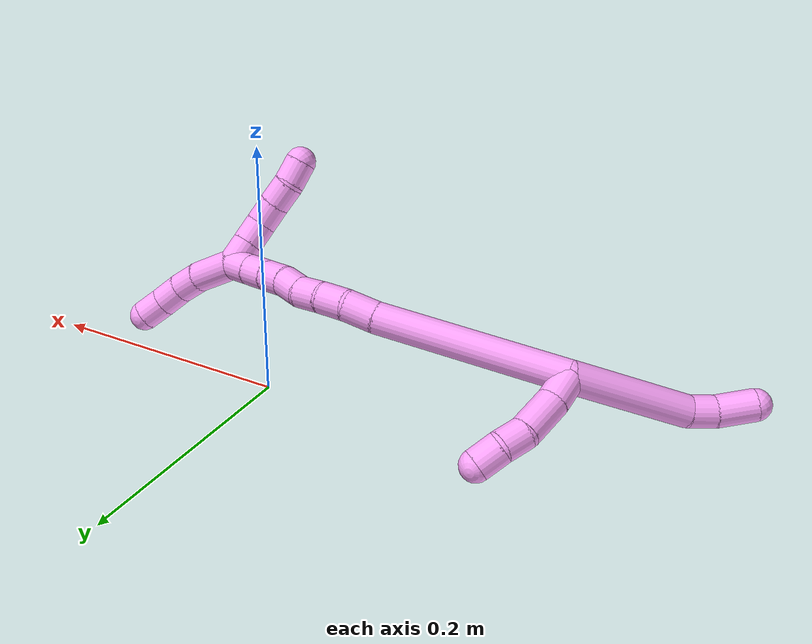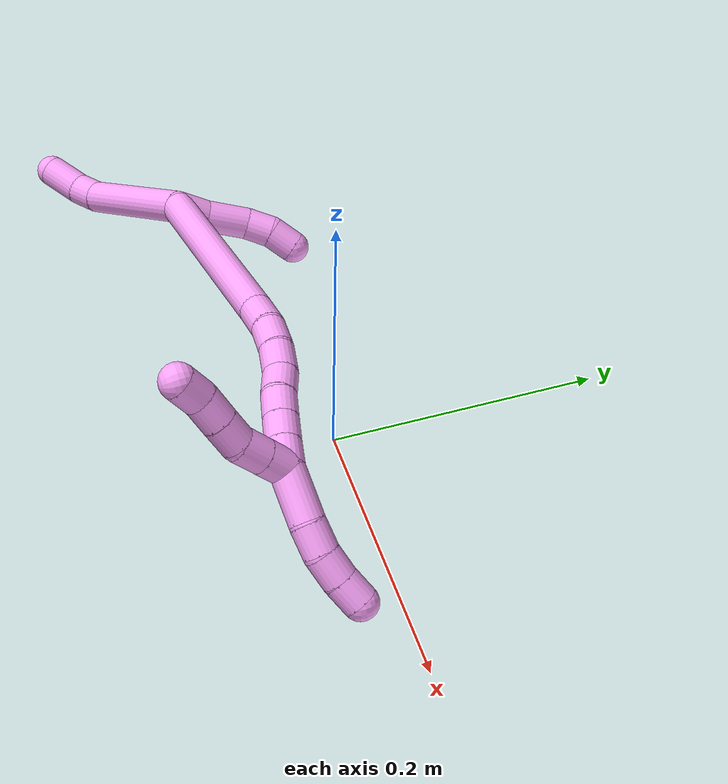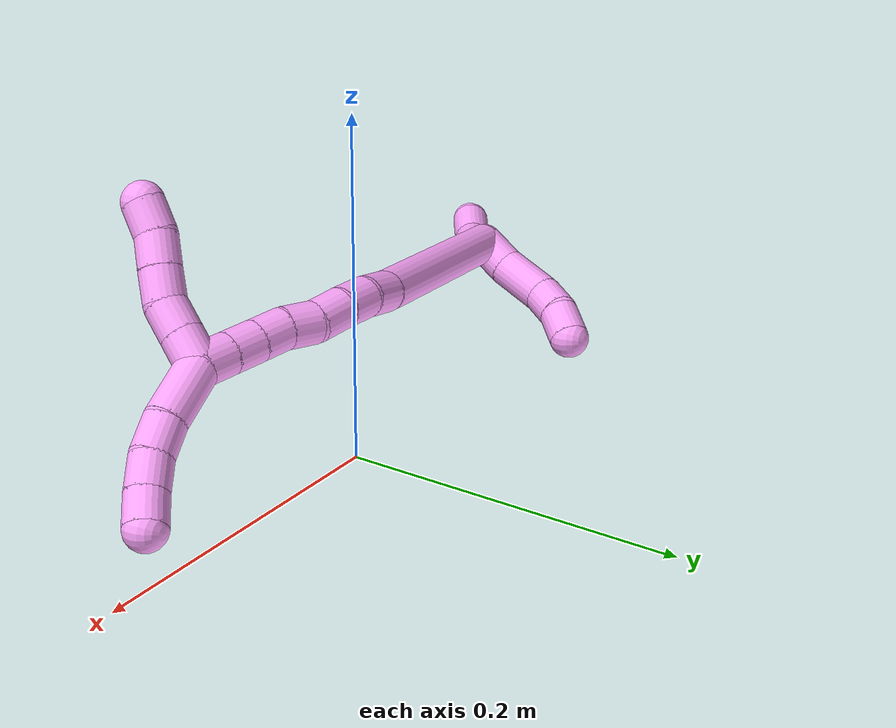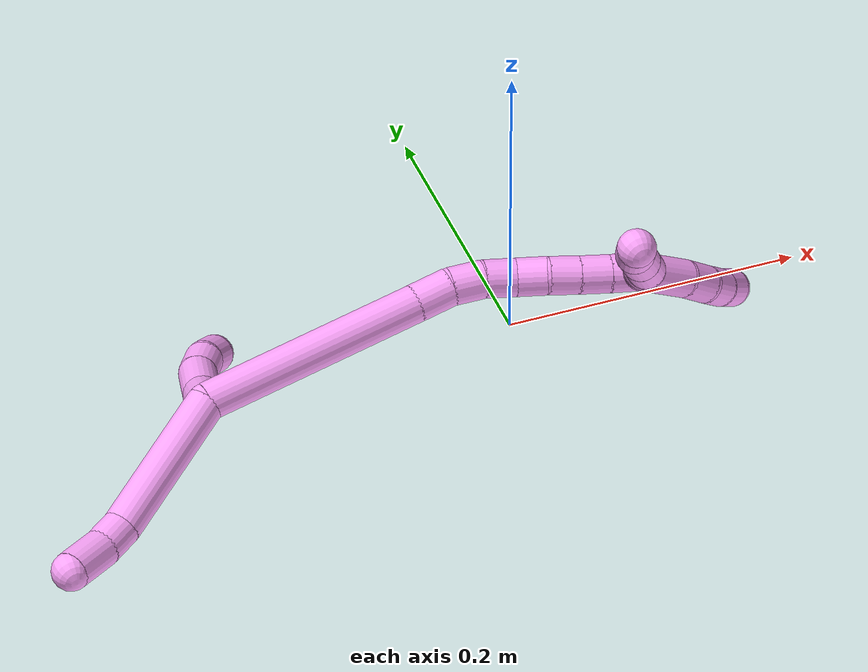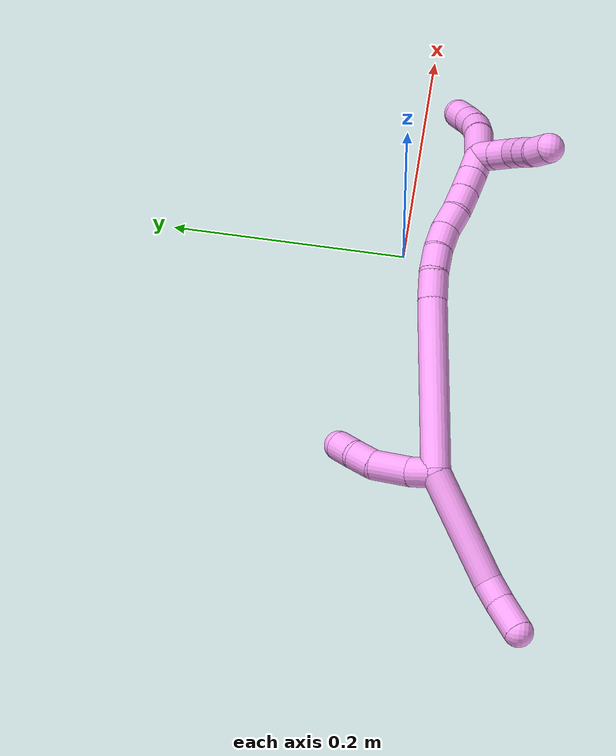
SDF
<sdf version="1.7">
 <world name="default">
  <model name="4">
   <static>0</static>
   <link name="4">
    <collision name="collision-cylinder-e_1_2_8">
     <pose>-0.041416 0.005666 -0.025878 -2.92605 -1.00174 2.75136</pose>
     <geometry><cylinder><radius>0.0125</radius><length>0.098326</length></cylinder></geometry>
     <surface>
      <friction><ode><mu>1.16</mu><mu2>1.16</mu2><slip1>0</slip1><slip2>0</slip2></ode></friction>
      <contact><ode><kp>1e+06</kp><kd>1</kd><max_vel>0</max_vel><min_depth>0.001</min_depth></ode></contact>
     </surface>
    </collision>
    <visual name="visual-cylinder-e_1_2_8">
     <pose>-0.041416 0.005666 -0.025878 -2.92605 -1.00174 2.75136</pose>
     <geometry><cylinder><radius>0.0125</radius><length>0.098326</length></cylinder></geometry>
     <material><ambient>1 0.65098 0.996078 1</ambient></material>
    </visual>
    <collision name="collision-cylinder-e_2_8_9">
     <pose>-0.091237 0.00949 -0.057451 2.8288 -0.952018 -2.54796</pose>
     <geometry><cylinder><radius>0.0125</radius><length>0.020638</length></cylinder></geometry>
     <surface>
      <friction><ode><mu>1.16</mu><mu2>1.16</mu2><slip1>0</slip1><slip2>0</slip2></ode></friction>
      <contact><ode><kp>1e+06</kp><kd>1</kd><max_vel>0</max_vel><min_depth>0.001</min_depth></ode></contact>
     </surface>
    </collision>
    <visual name="visual-cylinder-e_2_8_9">
     <pose>-0.091237 0.00949 -0.057451 2.8288 -0.952018 -2.54796</pose>
     <geometry><cylinder><radius>0.0125</radius><length>0.020638</length></cylinder></geometry>
     <material><ambient>1 0.65098 0.996078 1</ambient></material>
    </visual>
    <collision name="collision-cylinder-e_3_9_6">
     <pose>-0.111423 0.001746 -0.071343 2.51758 -0.861974 -1.91819</pose>
     <geometry><cylinder><radius>0.0125</radius><length>0.031036</length></cylinder></geometry>
     <surface>
      <friction><ode><mu>1.16</mu><mu2>1.16</mu2><slip1>0</slip1><slip2>0</slip2></ode></friction>
      <contact><ode><kp>1e+06</kp><kd>1</kd><max_vel>0</max_vel><min_depth>0.001</min_depth></ode></contact>
     </surface>
    </collision>
    <visual name="visual-cylinder-e_3_9_6">
     <pose>-0.111423 0.001746 -0.071343 2.51758 -0.861974 -1.91819</pose>
     <geometry><cylinder><radius>0.0125</radius><length>0.031036</length></cylinder></geometry>
     <material><ambient>1 0.65098 0.996078 1</ambient></material>
    </visual>
    <collision name="collision-cylinder-e_1_2_10">
     <pose>0.000461 0.006698 0.009777 -0.600666 0.038897 -0.012048</pose>
     <geometry><cylinder><radius>0.0125</radius><length>0.023721</length></cylinder></geometry>
     <surface>
      <friction><ode><mu>1.16</mu><mu2>1.16</mu2><slip1>0</slip1><slip2>0</slip2></ode></friction>
      <contact><ode><kp>1e+06</kp><kd>1</kd><max_vel>0</max_vel><min_depth>0.001</min_depth></ode></contact>
     </surface>
    </collision>
    <visual name="visual-cylinder-e_1_2_10">
     <pose>0.000461 0.006698 0.009777 -0.600666 0.038897 -0.012048</pose>
     <geometry><cylinder><radius>0.0125</radius><length>0.023721</length></cylinder></geometry>
     <material><ambient>1 0.65098 0.996078 1</ambient></material>
    </visual>
    <collision name="collision-cylinder-e_2_10_11">
     <pose>0.003403 0.020322 0.03502 -0.421 0.145347 -0.031108</pose>
     <geometry><cylinder><radius>0.0125</radius><length>0.034253</length></cylinder></geometry>
     <surface>
      <friction><ode><mu>1.16</mu><mu2>1.16</mu2><slip1>0</slip1><slip2>0</slip2></ode></friction>
      <contact><ode><kp>1e+06</kp><kd>1</kd><max_vel>0</max_vel><min_depth>0.001</min_depth></ode></contact>
     </surface>
    </collision>
    <visual name="visual-cylinder-e_2_10_11">
     <pose>0.003403 0.020322 0.03502 -0.421 0.145347 -0.031108</pose>
     <geometry><cylinder><radius>0.0125</radius><length>0.034253</length></cylinder></geometry>
     <material><ambient>1 0.65098 0.996078 1</ambient></material>
    </visual>
    <collision name="collision-cylinder-e_3_11_12">
     <pose>0.010173 0.03167 0.05887 -0.485379 0.424948 -0.106715</pose>
     <geometry><cylinder><radius>0.0125</radius><length>0.020809</length></cylinder></geometry>
     <surface>
      <friction><ode><mu>1.16</mu><mu2>1.16</mu2><slip1>0</slip1><slip2>0</slip2></ode></friction>
      <contact><ode><kp>1e+06</kp><kd>1</kd><max_vel>0</max_vel><min_depth>0.001</min_depth></ode></contact>
     </surface>
    </collision>
    <visual name="visual-cylinder-e_3_11_12">
     <pose>0.010173 0.03167 0.05887 -0.485379 0.424948 -0.106715</pose>
     <geometry><cylinder><radius>0.0125</radius><length>0.020809</length></cylinder></geometry>
     <material><ambient>1 0.65098 0.996078 1</ambient></material>
    </visual>
    <collision name="collision-cylinder-e_4_12_5">
     <pose>0.018799 0.043038 0.073999 -0.800116 0.42113 -0.18027</pose>
     <geometry><cylinder><radius>0.0125</radius><length>0.021218</length></cylinder></geometry>
     <surface>
      <friction><ode><mu>1.16</mu><mu2>1.16</mu2><slip1>0</slip1><slip2>0</slip2></ode></friction>
      <contact><ode><kp>1e+06</kp><kd>1</kd><max_vel>0</max_vel><min_depth>0.001</min_depth></ode></contact>
     </surface>
    </collision>
    <visual name="visual-cylinder-e_4_12_5">
     <pose>0.018799 0.043038 0.073999 -0.800116 0.42113 -0.18027</pose>
     <geometry><cylinder><radius>0.0125</radius><length>0.021218</length></cylinder></geometry>
     <material><ambient>1 0.65098 0.996078 1</ambient></material>
    </visual>
    <collision name="collision-cylinder-e_1_2_13">
     <pose>0.07393 0.011633 0.008541 -0.937456 1.37802 -0.790285</pose>
     <geometry><cylinder><radius>0.0125</radius><length>0.150651</length></cylinder></geometry>
     <surface>
      <friction><ode><mu>1.16</mu><mu2>1.16</mu2><slip1>0</slip1><slip2>0</slip2></ode></friction>
      <contact><ode><kp>1e+06</kp><kd>1</kd><max_vel>0</max_vel><min_depth>0.001</min_depth></ode></contact>
     </surface>
    </collision>
    <visual name="visual-cylinder-e_1_2_13">
     <pose>0.07393 0.011633 0.008541 -0.937456 1.37802 -0.790285</pose>
     <geometry><cylinder><radius>0.0125</radius><length>0.150651</length></cylinder></geometry>
     <material><ambient>1 0.65098 0.996078 1</ambient></material>
    </visual>
    <collision name="collision-cylinder-e_2_13_14">
     <pose>0.160303 0.02425 0.017742 -0.980558 1.47583 -0.903674</pose>
     <geometry><cylinder><radius>0.0125</radius><length>0.024998</length></cylinder></geometry>
     <surface>
      <friction><ode><mu>1.16</mu><mu2>1.16</mu2><slip1>0</slip1><slip2>0</slip2></ode></friction>
      <contact><ode><kp>1e+06</kp><kd>1</kd><max_vel>0</max_vel><min_depth>0.001</min_depth></ode></contact>
     </surface>
    </collision>
    <visual name="visual-cylinder-e_2_13_14">
     <pose>0.160303 0.02425 0.017742 -0.980558 1.47583 -0.903674</pose>
     <geometry><cylinder><radius>0.0125</radius><length>0.024998</length></cylinder></geometry>
     <material><ambient>1 0.65098 0.996078 1</ambient></material>
    </visual>
    <collision name="collision-cylinder-e_3_14_15">
     <pose>0.183413 0.027986 0.017581 -1.8606 1.30785 -1.5987</pose>
     <geometry><cylinder><radius>0.0125</radius><length>0.022094</length></cylinder></geometry>
     <surface>
      <friction><ode><mu>1.16</mu><mu2>1.16</mu2><slip1>0</slip1><slip2>0</slip2></ode></friction>
      <contact><ode><kp>1e+06</kp><kd>1</kd><max_vel>0</max_vel><min_depth>0.001</min_depth></ode></contact>
     </surface>
    </collision>
    <visual name="visual-cylinder-e_3_14_15">
     <pose>0.183413 0.027986 0.017581 -1.8606 1.30785 -1.5987</pose>
     <geometry><cylinder><radius>0.0125</radius><length>0.022094</length></cylinder></geometry>
     <material><ambient>1 0.65098 0.996078 1</ambient></material>
    </visual>
    <collision name="collision-cylinder-e_4_15_16">
     <pose>0.20395 0.034597 0.014603 -2.08046 1.14967 -1.66976</pose>
     <geometry><cylinder><radius>0.0125</radius><length>0.02163</length></cylinder></geometry>
     <surface>
      <friction><ode><mu>1.16</mu><mu2>1.16</mu2><slip1>0</slip1><slip2>0</slip2></ode></friction>
      <contact><ode><kp>1e+06</kp><kd>1</kd><max_vel>0</max_vel><min_depth>0.001</min_depth></ode></contact>
     </surface>
    </collision>
    <visual name="visual-cylinder-e_4_15_16">
     <pose>0.20395 0.034597 0.014603 -2.08046 1.14967 -1.66976</pose>
     <geometry><cylinder><radius>0.0125</radius><length>0.02163</length></cylinder></geometry>
     <material><ambient>1 0.65098 0.996078 1</ambient></material>
    </visual>
    <collision name="collision-cylinder-e_5_16_17">
     <pose>0.223146 0.040254 0.008545 -2.70975 1.13917 -2.48161</pose>
     <geometry><cylinder><radius>0.0125</radius><length>0.020535</length></cylinder></geometry>
     <surface>
      <friction><ode><mu>1.16</mu><mu2>1.16</mu2><slip1>0</slip1><slip2>0</slip2></ode></friction>
      <contact><ode><kp>1e+06</kp><kd>1</kd><max_vel>0</max_vel><min_depth>0.001</min_depth></ode></contact>
     </surface>
    </collision>
    <visual name="visual-cylinder-e_5_16_17">
     <pose>0.223146 0.040254 0.008545 -2.70975 1.13917 -2.48161</pose>
     <geometry><cylinder><radius>0.0125</radius><length>0.020535</length></cylinder></geometry>
     <material><ambient>1 0.65098 0.996078 1</ambient></material>
    </visual>
    <collision name="collision-cylinder-e_6_17_18">
     <pose>0.241538 0.04541 0.001978 -2.24177 1.12902 -1.83851</pose>
     <geometry><cylinder><radius>0.0125</radius><length>0.020059</length></cylinder></geometry>
     <surface>
      <friction><ode><mu>1.16</mu><mu2>1.16</mu2><slip1>0</slip1><slip2>0</slip2></ode></friction>
      <contact><ode><kp>1e+06</kp><kd>1</kd><max_vel>0</max_vel><min_depth>0.001</min_depth></ode></contact>
     </surface>
    </collision>
    <visual name="visual-cylinder-e_6_17_18">
     <pose>0.241538 0.04541 0.001978 -2.24177 1.12902 -1.83851</pose>
     <geometry><cylinder><radius>0.0125</radius><length>0.020059</length></cylinder></geometry>
     <material><ambient>1 0.65098 0.996078 1</ambient></material>
    </visual>
    <collision name="collision-cylinder-e_7_18_19">
     <pose>0.259752 0.051982 -0.003172 -2.22894 1.15288 -1.84808</pose>
     <geometry><cylinder><radius>0.0125</radius><length>0.020017</length></cylinder></geometry>
     <surface>
      <friction><ode><mu>1.16</mu><mu2>1.16</mu2><slip1>0</slip1><slip2>0</slip2></ode></friction>
      <contact><ode><kp>1e+06</kp><kd>1</kd><max_vel>0</max_vel><min_depth>0.001</min_depth></ode></contact>
     </surface>
    </collision>
    <visual name="visual-cylinder-e_7_18_19">
     <pose>0.259752 0.051982 -0.003172 -2.22894 1.15288 -1.84808</pose>
     <geometry><cylinder><radius>0.0125</radius><length>0.020017</length></cylinder></geometry>
     <material><ambient>1 0.65098 0.996078 1</ambient></material>
    </visual>
    <collision name="collision-cylinder-e_8_19_1">
     <pose>0.278143 0.058292 -0.007922 -2.20237 1.17746 -1.84183</pose>
     <geometry><cylinder><radius>0.0125</radius><length>0.020017</length></cylinder></geometry>
     <surface>
      <friction><ode><mu>1.16</mu><mu2>1.16</mu2><slip1>0</slip1><slip2>0</slip2></ode></friction>
      <contact><ode><kp>1e+06</kp><kd>1</kd><max_vel>0</max_vel><min_depth>0.001</min_depth></ode></contact>
     </surface>
    </collision>
    <visual name="visual-cylinder-e_8_19_1">
     <pose>0.278143 0.058292 -0.007922 -2.20237 1.17746 -1.84183</pose>
     <geometry><cylinder><radius>0.0125</radius><length>0.020017</length></cylinder></geometry>
     <material><ambient>1 0.65098 0.996078 1</ambient></material>
    </visual>
    <collision name="collision-cylinder-e_1_1_20">
     <pose>0.300631 0.074685 -0.009521 -1.5208 0.78275 -0.748102</pose>
     <geometry><cylinder><radius>0.0125</radius><length>0.03756</length></cylinder></geometry>
     <surface>
      <friction><ode><mu>1.16</mu><mu2>1.16</mu2><slip1>0</slip1><slip2>0</slip2></ode></friction>
      <contact><ode><kp>1e+06</kp><kd>1</kd><max_vel>0</max_vel><min_depth>0.001</min_depth></ode></contact>
     </surface>
    </collision>
    <visual name="visual-cylinder-e_1_1_20">
     <pose>0.300631 0.074685 -0.009521 -1.5208 0.78275 -0.748102</pose>
     <geometry><cylinder><radius>0.0125</radius><length>0.03756</length></cylinder></geometry>
     <material><ambient>1 0.65098 0.996078 1</ambient></material>
    </visual>
    <collision name="collision-cylinder-e_2_20_21">
     <pose>0.320238 0.096597 -0.007457 -1.40979 0.629973 -0.540791</pose>
     <geometry><cylinder><radius>0.0125</radius><length>0.0216</length></cylinder></geometry>
     <surface>
      <friction><ode><mu>1.16</mu><mu2>1.16</mu2><slip1>0</slip1><slip2>0</slip2></ode></friction>
      <contact><ode><kp>1e+06</kp><kd>1</kd><max_vel>0</max_vel><min_depth>0.001</min_depth></ode></contact>
     </surface>
    </collision>
    <visual name="visual-cylinder-e_2_20_21">
     <pose>0.320238 0.096597 -0.007457 -1.40979 0.629973 -0.540791</pose>
     <geometry><cylinder><radius>0.0125</radius><length>0.0216</length></cylinder></geometry>
     <material><ambient>1 0.65098 0.996078 1</ambient></material>
    </visual>
    <collision name="collision-cylinder-e_3_21_22">
     <pose>0.331647 0.113657 -0.002716 -1.19405 0.507112 -0.348727</pose>
     <geometry><cylinder><radius>0.0125</radius><length>0.020781</length></cylinder></geometry>
     <surface>
      <friction><ode><mu>1.16</mu><mu2>1.16</mu2><slip1>0</slip1><slip2>0</slip2></ode></friction>
      <contact><ode><kp>1e+06</kp><kd>1</kd><max_vel>0</max_vel><min_depth>0.001</min_depth></ode></contact>
     </surface>
    </collision>
    <visual name="visual-cylinder-e_3_21_22">
     <pose>0.331647 0.113657 -0.002716 -1.19405 0.507112 -0.348727</pose>
     <geometry><cylinder><radius>0.0125</radius><length>0.020781</length></cylinder></geometry>
     <material><ambient>1 0.65098 0.996078 1</ambient></material>
    </visual>
    <collision name="collision-cylinder-e_4_22_4">
     <pose>0.341492 0.129773 0.004954 -1.05697 0.498958 -0.295365</pose>
     <geometry><cylinder><radius>0.0125</radius><length>0.020059</length></cylinder></geometry>
     <surface>
      <friction><ode><mu>1.16</mu><mu2>1.16</mu2><slip1>0</slip1><slip2>0</slip2></ode></friction>
      <contact><ode><kp>1e+06</kp><kd>1</kd><max_vel>0</max_vel><min_depth>0.001</min_depth></ode></contact>
     </surface>
    </collision>
    <visual name="visual-cylinder-e_4_22_4">
     <pose>0.341492 0.129773 0.004954 -1.05697 0.498958 -0.295365</pose>
     <geometry><cylinder><radius>0.0125</radius><length>0.020059</length></cylinder></geometry>
     <material><ambient>1 0.65098 0.996078 1</ambient></material>
    </visual>
    <collision name="collision-cylinder-e_1_1_23">
     <pose>0.286929 0.054079 -0.016997 2.32095 -0.045832 -0.105279</pose>
     <geometry><cylinder><radius>0.0125</radius><length>0.02</length></cylinder></geometry>
     <surface>
      <friction><ode><mu>1.16</mu><mu2>1.16</mu2><slip1>0</slip1><slip2>0</slip2></ode></friction>
      <contact><ode><kp>1e+06</kp><kd>1</kd><max_vel>0</max_vel><min_depth>0.001</min_depth></ode></contact>
     </surface>
    </collision>
    <visual name="visual-cylinder-e_1_1_23">
     <pose>0.286929 0.054079 -0.016997 2.32095 -0.045832 -0.105279</pose>
     <geometry><cylinder><radius>0.0125</radius><length>0.02</length></cylinder></geometry>
     <material><ambient>1 0.65098 0.996078 1</ambient></material>
    </visual>
    <collision name="collision-cylinder-e_2_23_24">
     <pose>0.286 0.03946 -0.030613 2.32044 -0.047108 -0.10813</pose>
     <geometry><cylinder><radius>0.0125</radius><length>0.02</length></cylinder></geometry>
     <surface>
      <friction><ode><mu>1.16</mu><mu2>1.16</mu2><slip1>0</slip1><slip2>0</slip2></ode></friction>
      <contact><ode><kp>1e+06</kp><kd>1</kd><max_vel>0</max_vel><min_depth>0.001</min_depth></ode></contact>
     </surface>
    </collision>
    <visual name="visual-cylinder-e_2_23_24">
     <pose>0.286 0.03946 -0.030613 2.32044 -0.047108 -0.10813</pose>
     <geometry><cylinder><radius>0.0125</radius><length>0.02</length></cylinder></geometry>
     <material><ambient>1 0.65098 0.996078 1</ambient></material>
    </visual>
    <collision name="collision-cylinder-e_3_24_25">
     <pose>0.283818 0.023203 -0.041547 2.0031 -0.171985 -0.267817</pose>
     <geometry><cylinder><radius>0.0125</radius><length>0.02</length></cylinder></geometry>
     <surface>
      <friction><ode><mu>1.16</mu><mu2>1.16</mu2><slip1>0</slip1><slip2>0</slip2></ode></friction>
      <contact><ode><kp>1e+06</kp><kd>1</kd><max_vel>0</max_vel><min_depth>0.001</min_depth></ode></contact>
     </surface>
    </collision>
    <visual name="visual-cylinder-e_3_24_25">
     <pose>0.283818 0.023203 -0.041547 2.0031 -0.171985 -0.267817</pose>
     <geometry><cylinder><radius>0.0125</radius><length>0.02</length></cylinder></geometry>
     <material><ambient>1 0.65098 0.996078 1</ambient></material>
    </visual>
    <collision name="collision-cylinder-e_4_25_26">
     <pose>0.280102 0.005308 -0.049663 1.98996 -0.201808 -0.30942</pose>
     <geometry><cylinder><radius>0.0125</radius><length>0.02</length></cylinder></geometry>
     <surface>
      <friction><ode><mu>1.16</mu><mu2>1.16</mu2><slip1>0</slip1><slip2>0</slip2></ode></friction>
      <contact><ode><kp>1e+06</kp><kd>1</kd><max_vel>0</max_vel><min_depth>0.001</min_depth></ode></contact>
     </surface>
    </collision>
    <visual name="visual-cylinder-e_4_25_26">
     <pose>0.280102 0.005308 -0.049663 1.98996 -0.201808 -0.30942</pose>
     <geometry><cylinder><radius>0.0125</radius><length>0.02</length></cylinder></geometry>
     <material><ambient>1 0.65098 0.996078 1</ambient></material>
    </visual>
    <collision name="collision-cylinder-e_5_26_3">
     <pose>0.27806 -0.011977 -0.059174 2.15604 -0.003783 -0.007045</pose>
     <geometry><cylinder><radius>0.0125</radius><length>0.02</length></cylinder></geometry>
     <surface>
      <friction><ode><mu>1.16</mu><mu2>1.16</mu2><slip1>0</slip1><slip2>0</slip2></ode></friction>
      <contact><ode><kp>1e+06</kp><kd>1</kd><max_vel>0</max_vel><min_depth>0.001</min_depth></ode></contact>
     </surface>
    </collision>
    <visual name="visual-cylinder-e_5_26_3">
     <pose>0.27806 -0.011977 -0.059174 2.15604 -0.003783 -0.007045</pose>
     <geometry><cylinder><radius>0.0125</radius><length>0.02</length></cylinder></geometry>
     <material><ambient>1 0.65098 0.996078 1</ambient></material>
    </visual>
    <collision name="collision-sphere-3">
     <pose>0.278022 -0.020313 -0.064698 0 -0 0</pose>
     <geometry><sphere><radius>0.0125</radius></sphere></geometry>
     <surface>
      <friction><ode><mu>1.16</mu><mu2>1.16</mu2><slip1>0</slip1><slip2>0</slip2></ode></friction>
      <contact><ode><kp>1e+06</kp><kd>1</kd><max_vel>0</max_vel><min_depth>0.001</min_depth></ode></contact>
     </surface>
    </collision>
    <visual name="visual-sphere-3">
     <pose>0.278022 -0.020313 -0.064698 0 -0 0</pose>
     <geometry><sphere><radius>0.0125</radius></sphere></geometry>
     <material><ambient>1 0.65098 0.996078 1</ambient></material>
    </visual>
    <collision name="collision-sphere-26">
     <pose>0.278097 -0.003641 -0.05365 0 -0 0</pose>
     <geometry><sphere><radius>0.0125</radius></sphere></geometry>
     <surface>
      <friction><ode><mu>1.16</mu><mu2>1.16</mu2><slip1>0</slip1><slip2>0</slip2></ode></friction>
      <contact><ode><kp>1e+06</kp><kd>1</kd><max_vel>0</max_vel><min_depth>0.001</min_depth></ode></contact>
     </surface>
    </collision>
    <visual name="visual-sphere-26">
     <pose>0.278097 -0.003641 -0.05365 0 -0 0</pose>
     <geometry><sphere><radius>0.0125</radius></sphere></geometry>
     <material><ambient>1 0.65098 0.996078 1</ambient></material>
    </visual>
    <collision name="collision-sphere-25">
     <pose>0.282106 0.014257 -0.045675 0 -0 0</pose>
     <geometry><sphere><radius>0.0125</radius></sphere></geometry>
     <surface>
      <friction><ode><mu>1.16</mu><mu2>1.16</mu2><slip1>0</slip1><slip2>0</slip2></ode></friction>
      <contact><ode><kp>1e+06</kp><kd>1</kd><max_vel>0</max_vel><min_depth>0.001</min_depth></ode></contact>
     </surface>
    </collision>
    <visual name="visual-sphere-25">
     <pose>0.282106 0.014257 -0.045675 0 -0 0</pose>
     <geometry><sphere><radius>0.0125</radius></sphere></geometry>
     <material><ambient>1 0.65098 0.996078 1</ambient></material>
    </visual>
    <collision name="collision-sphere-24">
     <pose>0.285529 0.032149 -0.03742 0 -0 0</pose>
     <geometry><sphere><radius>0.0125</radius></sphere></geometry>
     <surface>
      <friction><ode><mu>1.16</mu><mu2>1.16</mu2><slip1>0</slip1><slip2>0</slip2></ode></friction>
      <contact><ode><kp>1e+06</kp><kd>1</kd><max_vel>0</max_vel><min_depth>0.001</min_depth></ode></contact>
     </surface>
    </collision>
    <visual name="visual-sphere-24">
     <pose>0.285529 0.032149 -0.03742 0 -0 0</pose>
     <geometry><sphere><radius>0.0125</radius></sphere></geometry>
     <material><ambient>1 0.65098 0.996078 1</ambient></material>
    </visual>
    <collision name="collision-sphere-23">
     <pose>0.286471 0.046771 -0.023807 0 -0 0</pose>
     <geometry><sphere><radius>0.0125</radius></sphere></geometry>
     <surface>
      <friction><ode><mu>1.16</mu><mu2>1.16</mu2><slip1>0</slip1><slip2>0</slip2></ode></friction>
      <contact><ode><kp>1e+06</kp><kd>1</kd><max_vel>0</max_vel><min_depth>0.001</min_depth></ode></contact>
     </surface>
    </collision>
    <visual name="visual-sphere-23">
     <pose>0.286471 0.046771 -0.023807 0 -0 0</pose>
     <geometry><sphere><radius>0.0125</radius></sphere></geometry>
     <material><ambient>1 0.65098 0.996078 1</ambient></material>
    </visual>
    <collision name="collision-sphere-4">
     <pose>0.346291 0.137442 0.009283 0 -0 0</pose>
     <geometry><sphere><radius>0.0125</radius></sphere></geometry>
     <surface>
      <friction><ode><mu>1.16</mu><mu2>1.16</mu2><slip1>0</slip1><slip2>0</slip2></ode></friction>
      <contact><ode><kp>1e+06</kp><kd>1</kd><max_vel>0</max_vel><min_depth>0.001</min_depth></ode></contact>
     </surface>
    </collision>
    <visual name="visual-sphere-4">
     <pose>0.346291 0.137442 0.009283 0 -0 0</pose>
     <geometry><sphere><radius>0.0125</radius></sphere></geometry>
     <material><ambient>1 0.65098 0.996078 1</ambient></material>
    </visual>
    <collision name="collision-sphere-22">
     <pose>0.336693 0.122103 0.000626 0 -0 0</pose>
     <geometry><sphere><radius>0.0125</radius></sphere></geometry>
     <surface>
      <friction><ode><mu>1.16</mu><mu2>1.16</mu2><slip1>0</slip1><slip2>0</slip2></ode></friction>
      <contact><ode><kp>1e+06</kp><kd>1</kd><max_vel>0</max_vel><min_depth>0.001</min_depth></ode></contact>
     </surface>
    </collision>
    <visual name="visual-sphere-22">
     <pose>0.336693 0.122103 0.000626 0 -0 0</pose>
     <geometry><sphere><radius>0.0125</radius></sphere></geometry>
     <material><ambient>1 0.65098 0.996078 1</ambient></material>
    </visual>
    <collision name="collision-sphere-21">
     <pose>0.3266 0.105211 -0.006057 0 -0 0</pose>
     <geometry><sphere><radius>0.0125</radius></sphere></geometry>
     <surface>
      <friction><ode><mu>1.16</mu><mu2>1.16</mu2><slip1>0</slip1><slip2>0</slip2></ode></friction>
      <contact><ode><kp>1e+06</kp><kd>1</kd><max_vel>0</max_vel><min_depth>0.001</min_depth></ode></contact>
     </surface>
    </collision>
    <visual name="visual-sphere-21">
     <pose>0.3266 0.105211 -0.006057 0 -0 0</pose>
     <geometry><sphere><radius>0.0125</radius></sphere></geometry>
     <material><ambient>1 0.65098 0.996078 1</ambient></material>
    </visual>
    <collision name="collision-sphere-20">
     <pose>0.313875 0.087983 -0.008856 0 -0 0</pose>
     <geometry><sphere><radius>0.0125</radius></sphere></geometry>
     <surface>
      <friction><ode><mu>1.16</mu><mu2>1.16</mu2><slip1>0</slip1><slip2>0</slip2></ode></friction>
      <contact><ode><kp>1e+06</kp><kd>1</kd><max_vel>0</max_vel><min_depth>0.001</min_depth></ode></contact>
     </surface>
    </collision>
    <visual name="visual-sphere-20">
     <pose>0.313875 0.087983 -0.008856 0 -0 0</pose>
     <geometry><sphere><radius>0.0125</radius></sphere></geometry>
     <material><ambient>1 0.65098 0.996078 1</ambient></material>
    </visual>
    <collision name="collision-sphere-11">
     <pose>0.005883 0.027247 0.050486 0 -0 0</pose>
     <geometry><sphere><radius>0.0125</radius></sphere></geometry>
     <surface>
      <friction><ode><mu>1.16</mu><mu2>1.16</mu2><slip1>0</slip1><slip2>0</slip2></ode></friction>
      <contact><ode><kp>1e+06</kp><kd>1</kd><max_vel>0</max_vel><min_depth>0.001</min_depth></ode></contact>
     </surface>
    </collision>
    <visual name="visual-sphere-11">
     <pose>0.005883 0.027247 0.050486 0 -0 0</pose>
     <geometry><sphere><radius>0.0125</radius></sphere></geometry>
     <material><ambient>1 0.65098 0.996078 1</ambient></material>
    </visual>
    <collision name="collision-sphere-10">
     <pose>0.000922 0.013397 0.019554 0 -0 0</pose>
     <geometry><sphere><radius>0.0125</radius></sphere></geometry>
     <surface>
      <friction><ode><mu>1.16</mu><mu2>1.16</mu2><slip1>0</slip1><slip2>0</slip2></ode></friction>
      <contact><ode><kp>1e+06</kp><kd>1</kd><max_vel>0</max_vel><min_depth>0.001</min_depth></ode></contact>
     </surface>
    </collision>
    <visual name="visual-sphere-10">
     <pose>0.000922 0.013397 0.019554 0 -0 0</pose>
     <geometry><sphere><radius>0.0125</radius></sphere></geometry>
     <material><ambient>1 0.65098 0.996078 1</ambient></material>
    </visual>
    <collision name="collision-sphere-6">
     <pose>-0.123203 -0.004156 -0.079541 0 -0 0</pose>
     <geometry><sphere><radius>0.0125</radius></sphere></geometry>
     <surface>
      <friction><ode><mu>1.16</mu><mu2>1.16</mu2><slip1>0</slip1><slip2>0</slip2></ode></friction>
      <contact><ode><kp>1e+06</kp><kd>1</kd><max_vel>0</max_vel><min_depth>0.001</min_depth></ode></contact>
     </surface>
    </collision>
    <visual name="visual-sphere-6">
     <pose>-0.123203 -0.004156 -0.079541 0 -0 0</pose>
     <geometry><sphere><radius>0.0125</radius></sphere></geometry>
     <material><ambient>1 0.65098 0.996078 1</ambient></material>
    </visual>
    <collision name="collision-sphere-9">
     <pose>-0.099643 0.007648 -0.063146 0 -0 0</pose>
     <geometry><sphere><radius>0.0125</radius></sphere></geometry>
     <surface>
      <friction><ode><mu>1.16</mu><mu2>1.16</mu2><slip1>0</slip1><slip2>0</slip2></ode></friction>
      <contact><ode><kp>1e+06</kp><kd>1</kd><max_vel>0</max_vel><min_depth>0.001</min_depth></ode></contact>
     </surface>
    </collision>
    <visual name="visual-sphere-9">
     <pose>-0.099643 0.007648 -0.063146 0 -0 0</pose>
     <geometry><sphere><radius>0.0125</radius></sphere></geometry>
     <material><ambient>1 0.65098 0.996078 1</ambient></material>
    </visual>
    <collision name="collision-sphere-2">
     <geometry><sphere><radius>0.0125</radius></sphere></geometry>
     <surface>
      <friction><ode><mu>1.16</mu><mu2>1.16</mu2><slip1>0</slip1><slip2>0</slip2></ode></friction>
      <contact><ode><kp>1e+06</kp><kd>1</kd><max_vel>0</max_vel><min_depth>0.001</min_depth></ode></contact>
     </surface>
    </collision>
    <visual name="visual-sphere-2">
     <geometry><sphere><radius>0.0125</radius></sphere></geometry>
     <material><ambient>1 0.65098 0.996078 1</ambient></material>
    </visual>
    <collision name="collision-sphere-19">
     <pose>0.268899 0.055196 -0.005657 0 -0 0</pose>
     <geometry><sphere><radius>0.0125</radius></sphere></geometry>
     <surface>
      <friction><ode><mu>1.16</mu><mu2>1.16</mu2><slip1>0</slip1><slip2>0</slip2></ode></friction>
      <contact><ode><kp>1e+06</kp><kd>1</kd><max_vel>0</max_vel><min_depth>0.001</min_depth></ode></contact>
     </surface>
    </collision>
    <visual name="visual-sphere-19">
     <pose>0.268899 0.055196 -0.005657 0 -0 0</pose>
     <geometry><sphere><radius>0.0125</radius></sphere></geometry>
     <material><ambient>1 0.65098 0.996078 1</ambient></material>
    </visual>
    <collision name="collision-sphere-8">
     <pose>-0.082831 0.011331 -0.051756 0 -0 0</pose>
     <geometry><sphere><radius>0.0125</radius></sphere></geometry>
     <surface>
      <friction><ode><mu>1.16</mu><mu2>1.16</mu2><slip1>0</slip1><slip2>0</slip2></ode></friction>
      <contact><ode><kp>1e+06</kp><kd>1</kd><max_vel>0</max_vel><min_depth>0.001</min_depth></ode></contact>
     </surface>
    </collision>
    <visual name="visual-sphere-8">
     <pose>-0.082831 0.011331 -0.051756 0 -0 0</pose>
     <geometry><sphere><radius>0.0125</radius></sphere></geometry>
     <material><ambient>1 0.65098 0.996078 1</ambient></material>
    </visual>
    <collision name="collision-sphere-12">
     <pose>0.014462 0.036092 0.067255 0 -0 0</pose>
     <geometry><sphere><radius>0.0125</radius></sphere></geometry>
     <surface>
      <friction><ode><mu>1.16</mu><mu2>1.16</mu2><slip1>0</slip1><slip2>0</slip2></ode></friction>
      <contact><ode><kp>1e+06</kp><kd>1</kd><max_vel>0</max_vel><min_depth>0.001</min_depth></ode></contact>
     </surface>
    </collision>
    <visual name="visual-sphere-12">
     <pose>0.014462 0.036092 0.067255 0 -0 0</pose>
     <geometry><sphere><radius>0.0125</radius></sphere></geometry>
     <material><ambient>1 0.65098 0.996078 1</ambient></material>
    </visual>
    <collision name="collision-sphere-5">
     <pose>0.023136 0.049984 0.080744 0 -0 0</pose>
     <geometry><sphere><radius>0.0125</radius></sphere></geometry>
     <surface>
      <friction><ode><mu>1.16</mu><mu2>1.16</mu2><slip1>0</slip1><slip2>0</slip2></ode></friction>
      <contact><ode><kp>1e+06</kp><kd>1</kd><max_vel>0</max_vel><min_depth>0.001</min_depth></ode></contact>
     </surface>
    </collision>
    <visual name="visual-sphere-5">
     <pose>0.023136 0.049984 0.080744 0 -0 0</pose>
     <geometry><sphere><radius>0.0125</radius></sphere></geometry>
     <material><ambient>1 0.65098 0.996078 1</ambient></material>
    </visual>
    <collision name="collision-sphere-13">
     <pose>0.14786 0.023265 0.017082 0 -0 0</pose>
     <geometry><sphere><radius>0.0125</radius></sphere></geometry>
     <surface>
      <friction><ode><mu>1.16</mu><mu2>1.16</mu2><slip1>0</slip1><slip2>0</slip2></ode></friction>
      <contact><ode><kp>1e+06</kp><kd>1</kd><max_vel>0</max_vel><min_depth>0.001</min_depth></ode></contact>
     </surface>
    </collision>
    <visual name="visual-sphere-13">
     <pose>0.14786 0.023265 0.017082 0 -0 0</pose>
     <geometry><sphere><radius>0.0125</radius></sphere></geometry>
     <material><ambient>1 0.65098 0.996078 1</ambient></material>
    </visual>
    <collision name="collision-sphere-14">
     <pose>0.172746 0.025234 0.018401 0 -0 0</pose>
     <geometry><sphere><radius>0.0125</radius></sphere></geometry>
     <surface>
      <friction><ode><mu>1.16</mu><mu2>1.16</mu2><slip1>0</slip1><slip2>0</slip2></ode></friction>
      <contact><ode><kp>1e+06</kp><kd>1</kd><max_vel>0</max_vel><min_depth>0.001</min_depth></ode></contact>
     </surface>
    </collision>
    <visual name="visual-sphere-14">
     <pose>0.172746 0.025234 0.018401 0 -0 0</pose>
     <geometry><sphere><radius>0.0125</radius></sphere></geometry>
     <material><ambient>1 0.65098 0.996078 1</ambient></material>
    </visual>
    <collision name="collision-sphere-15">
     <pose>0.19408 0.030738 0.01676 0 -0 0</pose>
     <geometry><sphere><radius>0.0125</radius></sphere></geometry>
     <surface>
      <friction><ode><mu>1.16</mu><mu2>1.16</mu2><slip1>0</slip1><slip2>0</slip2></ode></friction>
      <contact><ode><kp>1e+06</kp><kd>1</kd><max_vel>0</max_vel><min_depth>0.001</min_depth></ode></contact>
     </surface>
    </collision>
    <visual name="visual-sphere-15">
     <pose>0.19408 0.030738 0.01676 0 -0 0</pose>
     <geometry><sphere><radius>0.0125</radius></sphere></geometry>
     <material><ambient>1 0.65098 0.996078 1</ambient></material>
    </visual>
    <collision name="collision-sphere-16">
     <pose>0.21382 0.038456 0.012446 0 -0 0</pose>
     <geometry><sphere><radius>0.0125</radius></sphere></geometry>
     <surface>
      <friction><ode><mu>1.16</mu><mu2>1.16</mu2><slip1>0</slip1><slip2>0</slip2></ode></friction>
      <contact><ode><kp>1e+06</kp><kd>1</kd><max_vel>0</max_vel><min_depth>0.001</min_depth></ode></contact>
     </surface>
    </collision>
    <visual name="visual-sphere-16">
     <pose>0.21382 0.038456 0.012446 0 -0 0</pose>
     <geometry><sphere><radius>0.0125</radius></sphere></geometry>
     <material><ambient>1 0.65098 0.996078 1</ambient></material>
    </visual>
    <collision name="collision-sphere-17">
     <pose>0.232472 0.042052 0.004644 0 -0 0</pose>
     <geometry><sphere><radius>0.0125</radius></sphere></geometry>
     <surface>
      <friction><ode><mu>1.16</mu><mu2>1.16</mu2><slip1>0</slip1><slip2>0</slip2></ode></friction>
      <contact><ode><kp>1e+06</kp><kd>1</kd><max_vel>0</max_vel><min_depth>0.001</min_depth></ode></contact>
     </surface>
    </collision>
    <visual name="visual-sphere-17">
     <pose>0.232472 0.042052 0.004644 0 -0 0</pose>
     <geometry><sphere><radius>0.0125</radius></sphere></geometry>
     <material><ambient>1 0.65098 0.996078 1</ambient></material>
    </visual>
    <collision name="collision-sphere-18">
     <pose>0.250605 0.048769 -0.000688 0 -0 0</pose>
     <geometry><sphere><radius>0.0125</radius></sphere></geometry>
     <surface>
      <friction><ode><mu>1.16</mu><mu2>1.16</mu2><slip1>0</slip1><slip2>0</slip2></ode></friction>
      <contact><ode><kp>1e+06</kp><kd>1</kd><max_vel>0</max_vel><min_depth>0.001</min_depth></ode></contact>
     </surface>
    </collision>
    <visual name="visual-sphere-18">
     <pose>0.250605 0.048769 -0.000688 0 -0 0</pose>
     <geometry><sphere><radius>0.0125</radius></sphere></geometry>
     <material><ambient>1 0.65098 0.996078 1</ambient></material>
    </visual>
    <collision name="collision-sphere-1">
     <pose>0.287387 0.061388 -0.010186 0 -0 0</pose>
     <geometry><sphere><radius>0.0125</radius></sphere></geometry>
     <surface>
      <friction><ode><mu>1.16</mu><mu2>1.16</mu2><slip1>0</slip1><slip2>0</slip2></ode></friction>
      <contact><ode><kp>1e+06</kp><kd>1</kd><max_vel>0</max_vel><min_depth>0.001</min_depth></ode></contact>
     </surface>
    </collision>
    <visual name="visual-sphere-1">
     <pose>0.287387 0.061388 -0.010186 0 -0 0</pose>
     <geometry><sphere><radius>0.0125</radius></sphere></geometry>
     <material><ambient>1 0.65098 0.996078 1</ambient></material>
    </visual>
    <inertial>
     <pose>0.127169 0.030617 -0.004968 0 -0 0</pose>
     <mass>0.75</mass>
     <inertia><ixx>2e-06</ixx><ixy>0</ixy><ixz>0</ixz><iyy>0.000363</iyy><iyz>0</iyz><izz>-0.000296</izz></inertia>
    </inertial>
   </link>
   <pose>-0.225263 -0.057323 0.049124 -1.51759 -0.274875 0.034511</pose>
  </model>
 </world>
</sdf>
